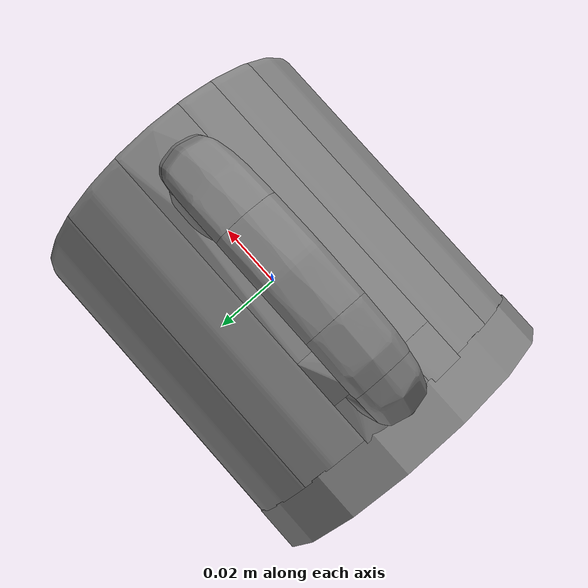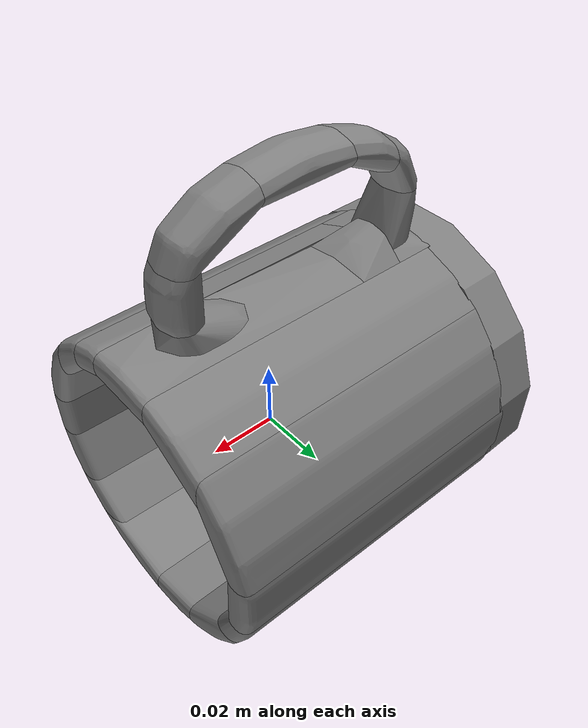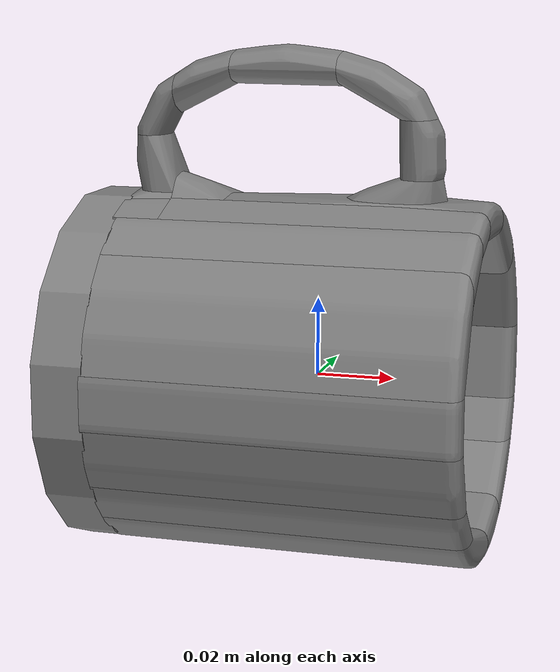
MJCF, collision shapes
<?xml version="1.0" encoding="utf-8"?>
<mujoco model="mug">
  <compiler angle="radian" meshdir="assets" texturedir="assets" autolimits="true"/>
  <asset>
    <material name="mug" specular="0.8" shininess="0.5" rgba="1 1 1 1"/>
    <mesh file="mug.obj"/>
    <mesh file="mug_collision_001.obj"/>
    <mesh file="mug_collision_002.obj"/>
    <mesh file="mug_collision_003.obj"/>
    <mesh file="mug_collision_004.obj"/>
    <mesh file="mug_collision_005.obj"/>
    <mesh file="mug_collision_006.obj"/>
    <mesh file="mug_collision_007.obj"/>
    <mesh file="mug_collision_008.obj"/>
    <mesh file="mug_collision_009.obj"/>
    <mesh file="mug_collision_010.obj"/>
    <mesh file="mug_collision_011.obj"/>
    <mesh file="mug_collision_012.obj"/>
    <mesh file="mug_collision_013.obj"/>
    <mesh file="mug_collision_014.obj"/>
    <mesh file="mug_collision_015.obj"/>
    <mesh file="mug_collision_016.obj"/>
    <mesh file="mug_collision_017.obj"/>
    <mesh file="mug_collision_018.obj"/>
    <mesh file="mug_collision_019.obj"/>
    <mesh file="mug_collision_020.obj"/>
    <mesh file="mug_collision_021.obj"/>
    <mesh file="mug_collision_022.obj"/>
    <mesh file="mug_collision_023.obj"/>
    <mesh file="mug_collision_024.obj"/>
    <mesh file="mug_collision_025.obj"/>
    <mesh file="mug_collision_026.obj"/>
  </asset>
  <default>
    <default class="mug">
      <default class="visual">
        <geom type="mesh" contype="0" conaffinity="0" group="2" material="mug"/>
      </default>
      <default class="collision">
        <geom type="mesh" group="3" density="1000" solimp="0.98 0.99 0.001" solref="0.004 1"/>
      </default>
      <geom pos="-0.06 0 0" euler="-1.57 0 -1.57"/>
    </default>
  </default>
  <worldbody>
    <body name="mug" childclass="mug">
      <geom name="mesh" mesh="mug" class="visual"/>
      <geom name="collider_001" mesh="mug_collision_001" class="collision"/>
      <geom name="collider_002" mesh="mug_collision_002" class="collision"/>
      <geom name="collider_003" mesh="mug_collision_003" class="collision"/>
      <geom name="collider_004" mesh="mug_collision_004" class="collision"/>
      <geom name="collider_005" mesh="mug_collision_005" class="collision"/>
      <geom name="collider_006" mesh="mug_collision_006" class="collision"/>
      <geom name="collider_007" mesh="mug_collision_007" class="collision"/>
      <geom name="collider_008" mesh="mug_collision_008" class="collision"/>
      <geom name="collider_009" mesh="mug_collision_009" class="collision"/>
      <geom name="collider_010" mesh="mug_collision_010" class="collision"/>
      <geom name="collider_011" mesh="mug_collision_011" class="collision"/>
      <geom name="collider_012" mesh="mug_collision_012" class="collision"/>
      <geom name="collider_013" mesh="mug_collision_013" class="collision"/>
      <geom name="collider_014" mesh="mug_collision_014" class="collision"/>
      <geom name="collider_015" mesh="mug_collision_015" class="collision"/>
      <geom name="collider_016" mesh="mug_collision_016" class="collision"/>
      <geom name="collider_017" mesh="mug_collision_017" class="collision"/>
      <geom name="collider_018" mesh="mug_collision_018" class="collision"/>
      <geom name="collider_019" mesh="mug_collision_019" class="collision"/>
      <geom name="collider_020" mesh="mug_collision_020" class="collision"/>
      <geom name="collider_021" mesh="mug_collision_021" class="collision"/>
      <geom name="collider_022" mesh="mug_collision_022" class="collision"/>
      <geom name="collider_023" mesh="mug_collision_023" class="collision"/>
      <geom name="collider_024" mesh="mug_collision_024" class="collision"/>
      <geom name="collider_025" mesh="mug_collision_025" class="collision"/>
      <geom name="collider_026" mesh="mug_collision_026" class="collision"/>
    </body>
  </worldbody>
</mujoco>
